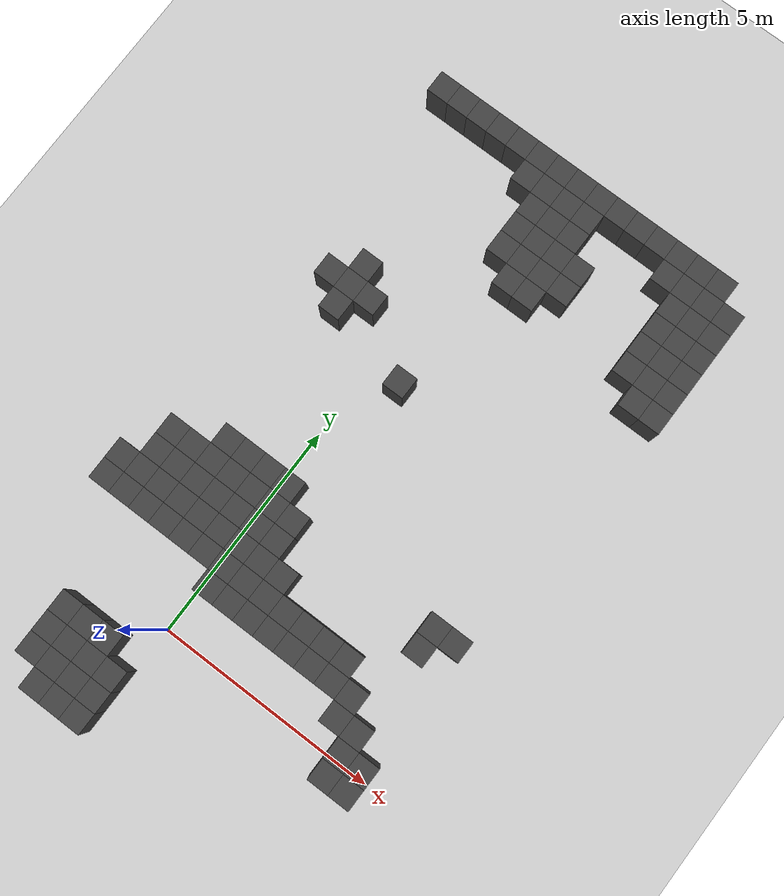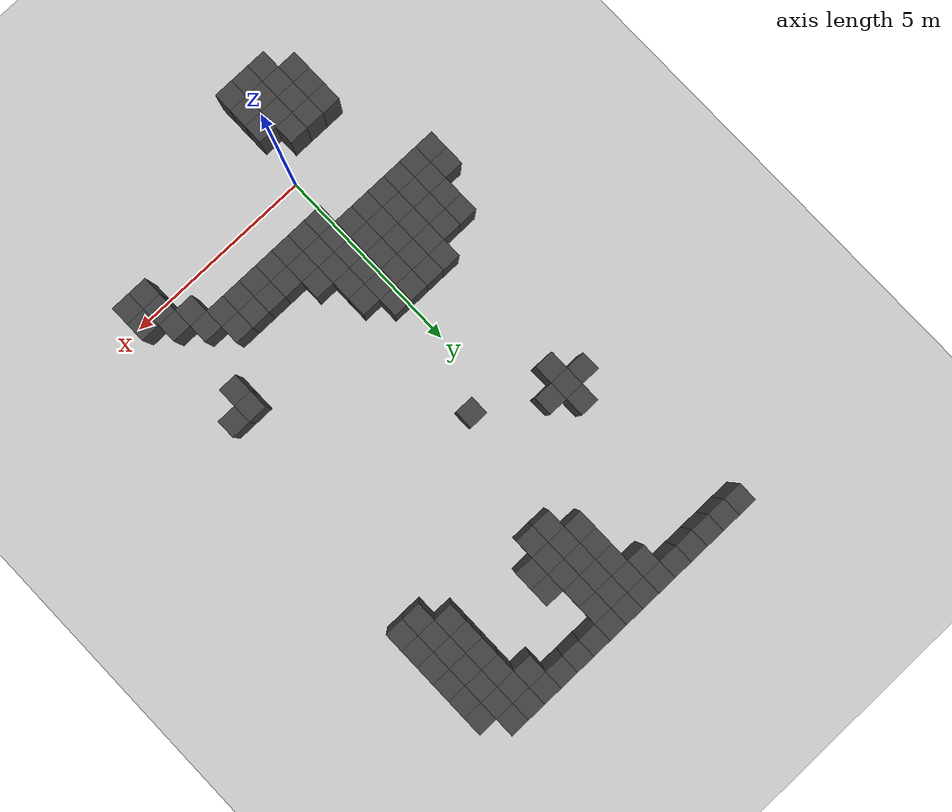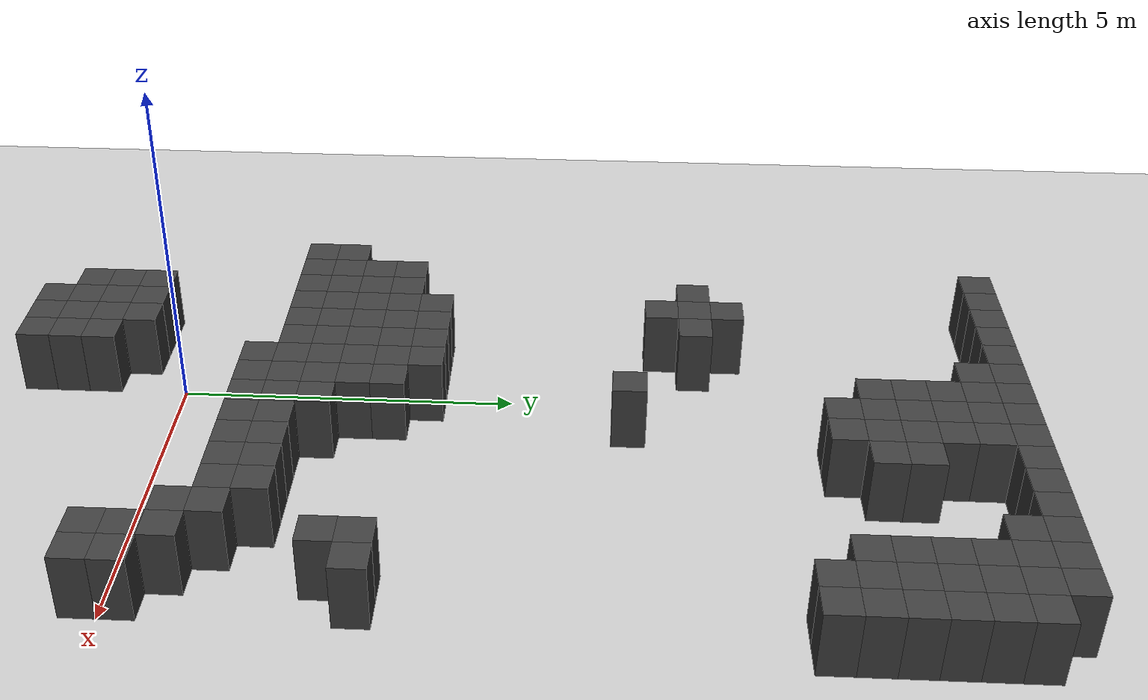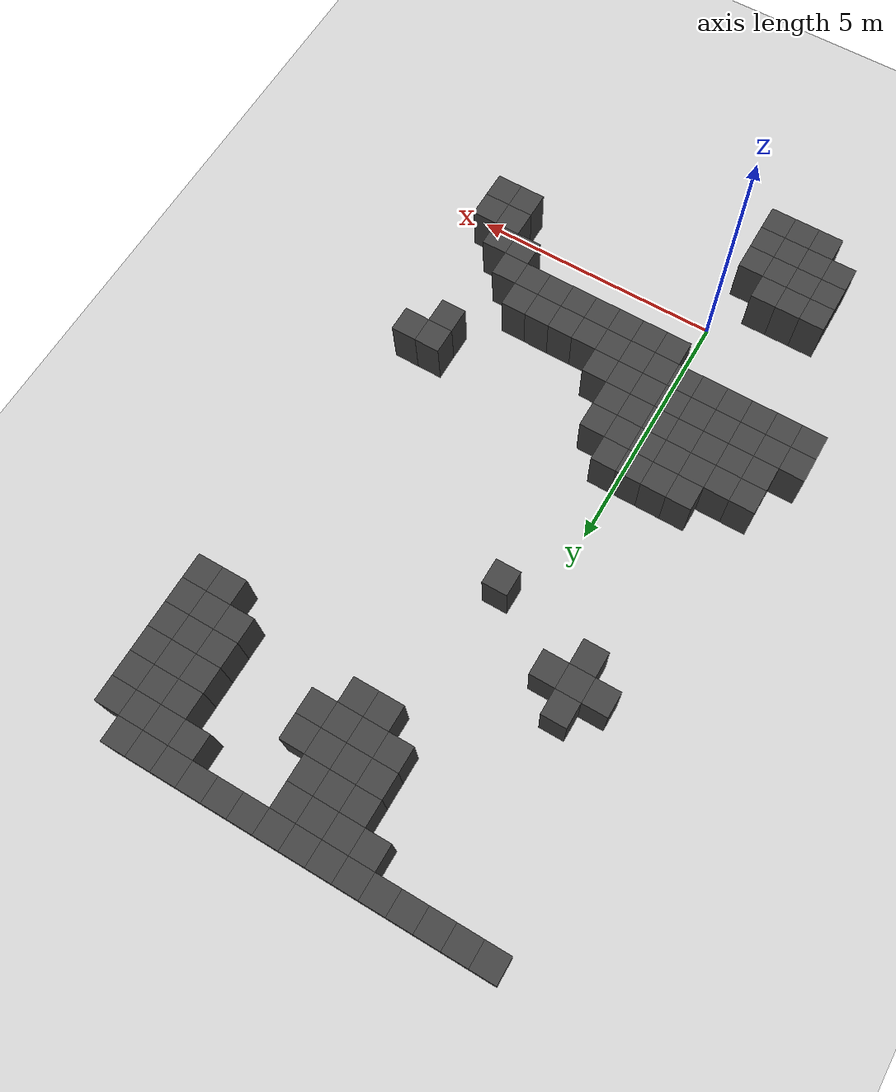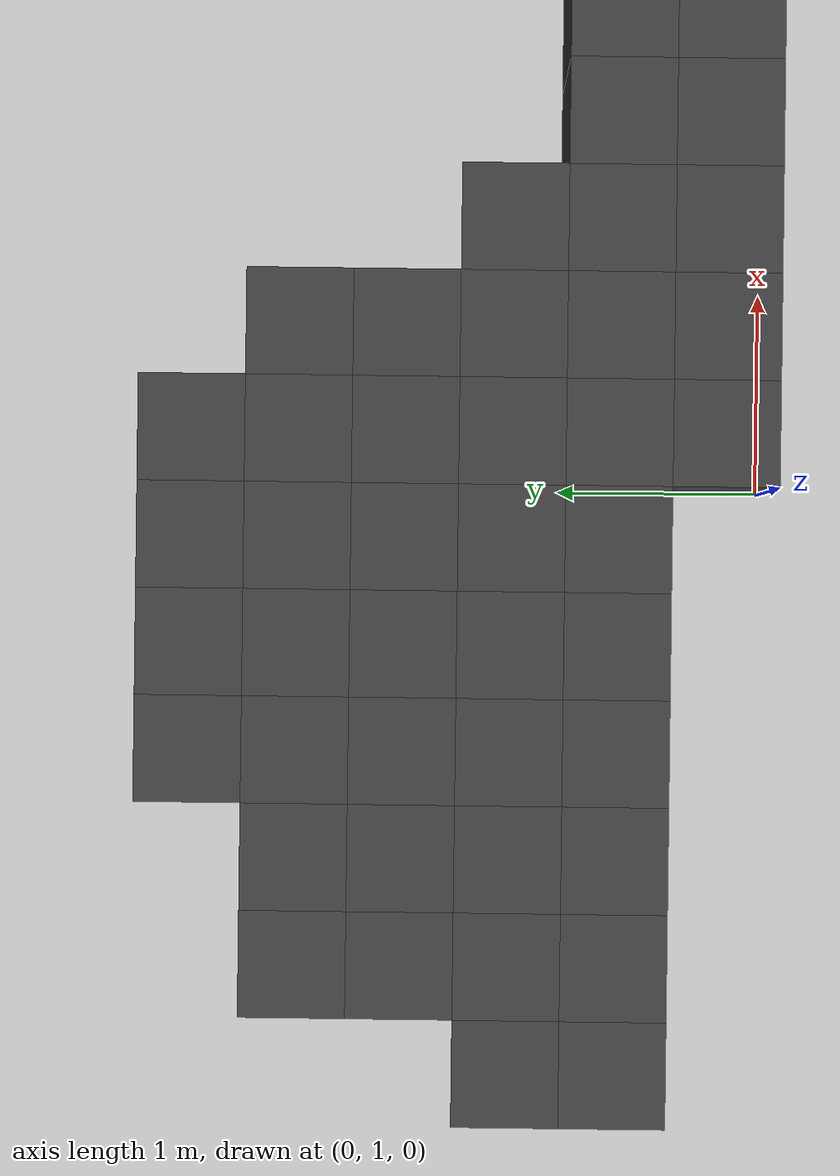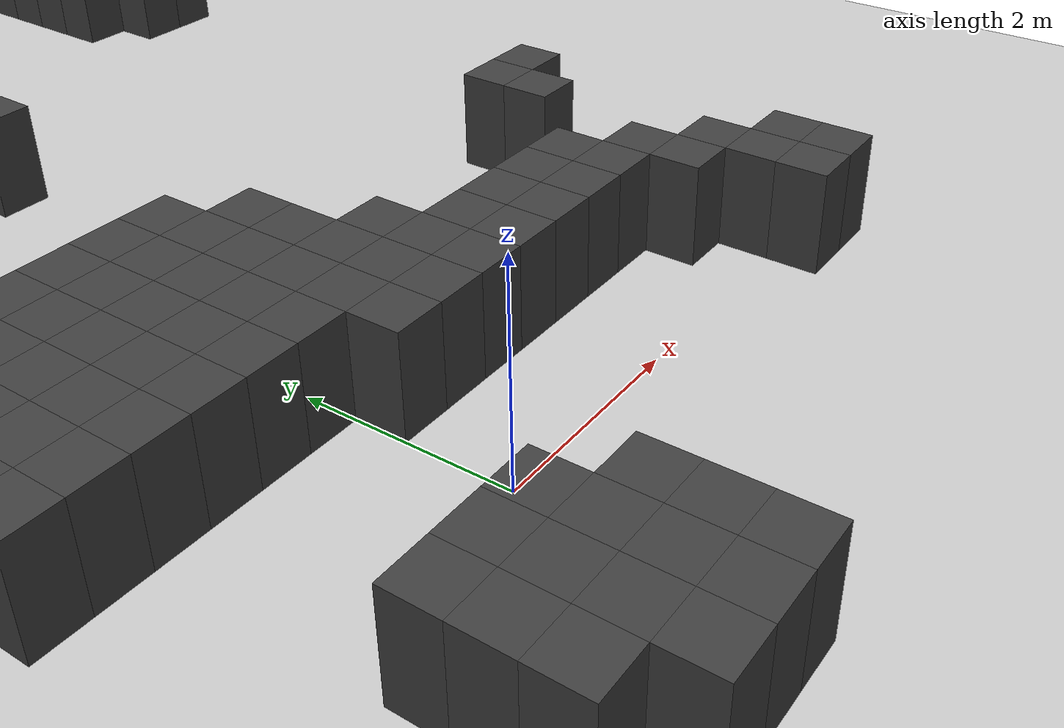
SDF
<sdf version="1.7">
 <world name="map_7981">
  <model name="ground_plane">
   <static>true</static>
   <link name="link">
    <collision name="collision">
     <geometry><plane><normal>0 0 1</normal><size>200 200</size></plane></geometry>
    </collision>
    <visual name="visual">
     <geometry><plane><normal>0 0 1</normal><size>200 200</size></plane></geometry>
     <material><ambient>0.8 0.8 0.8 1</ambient><diffuse>0.8 0.8 0.8 1</diffuse></material>
    </visual>
   </link>
  </model>
  <model name="maze_environment">
   <static>true</static>
   <link name="wall_20">
    <pose>-2.250 12.250 0.500 0 0 0</pose>
    <collision name="col"><geometry><box><size>0.5 0.5 1.0</size></box></geometry></collision>
    <visual name="vis">
     <geometry><box><size>0.5 0.5 1.0</size></box></geometry>
     <material><ambient>0.15 0.15 0.15 1</ambient><diffuse>0.25 0.25 0.25 1</diffuse></material>
    </visual>
   </link>
   <link name="wall_21">
    <pose>-1.750 12.250 0.500 0 0 0</pose>
    <collision name="col"><geometry><box><size>0.5 0.5 1.0</size></box></geometry></collision>
    <visual name="vis">
     <geometry><box><size>0.5 0.5 1.0</size></box></geometry>
     <material><ambient>0.15 0.15 0.15 1</ambient><diffuse>0.25 0.25 0.25 1</diffuse></material>
    </visual>
   </link>
   <link name="wall_22">
    <pose>-1.250 12.250 0.500 0 0 0</pose>
    <collision name="col"><geometry><box><size>0.5 0.5 1.0</size></box></geometry></collision>
    <visual name="vis">
     <geometry><box><size>0.5 0.5 1.0</size></box></geometry>
     <material><ambient>0.15 0.15 0.15 1</ambient><diffuse>0.25 0.25 0.25 1</diffuse></material>
    </visual>
   </link>
   <link name="wall_23">
    <pose>-0.750 12.250 0.500 0 0 0</pose>
    <collision name="col"><geometry><box><size>0.5 0.5 1.0</size></box></geometry></collision>
    <visual name="vis">
     <geometry><box><size>0.5 0.5 1.0</size></box></geometry>
     <material><ambient>0.15 0.15 0.15 1</ambient><diffuse>0.25 0.25 0.25 1</diffuse></material>
    </visual>
   </link>
   <link name="wall_24">
    <pose>-0.250 12.250 0.500 0 0 0</pose>
    <collision name="col"><geometry><box><size>0.5 0.5 1.0</size></box></geometry></collision>
    <visual name="vis">
     <geometry><box><size>0.5 0.5 1.0</size></box></geometry>
     <material><ambient>0.15 0.15 0.15 1</ambient><diffuse>0.25 0.25 0.25 1</diffuse></material>
    </visual>
   </link>
   <link name="wall_25">
    <pose>0.250 12.250 0.500 0 0 0</pose>
    <collision name="col"><geometry><box><size>0.5 0.5 1.0</size></box></geometry></collision>
    <visual name="vis">
     <geometry><box><size>0.5 0.5 1.0</size></box></geometry>
     <material><ambient>0.15 0.15 0.15 1</ambient><diffuse>0.25 0.25 0.25 1</diffuse></material>
    </visual>
   </link>
   <link name="wall_26">
    <pose>0.750 12.250 0.500 0 0 0</pose>
    <collision name="col"><geometry><box><size>0.5 0.5 1.0</size></box></geometry></collision>
    <visual name="vis">
     <geometry><box><size>0.5 0.5 1.0</size></box></geometry>
     <material><ambient>0.15 0.15 0.15 1</ambient><diffuse>0.25 0.25 0.25 1</diffuse></material>
    </visual>
   </link>
   <link name="wall_27">
    <pose>1.250 12.250 0.500 0 0 0</pose>
    <collision name="col"><geometry><box><size>0.5 0.5 1.0</size></box></geometry></collision>
    <visual name="vis">
     <geometry><box><size>0.5 0.5 1.0</size></box></geometry>
     <material><ambient>0.15 0.15 0.15 1</ambient><diffuse>0.25 0.25 0.25 1</diffuse></material>
    </visual>
   </link>
   <link name="wall_28">
    <pose>1.750 12.250 0.500 0 0 0</pose>
    <collision name="col"><geometry><box><size>0.5 0.5 1.0</size></box></geometry></collision>
    <visual name="vis">
     <geometry><box><size>0.5 0.5 1.0</size></box></geometry>
     <material><ambient>0.15 0.15 0.15 1</ambient><diffuse>0.25 0.25 0.25 1</diffuse></material>
    </visual>
   </link>
   <link name="wall_29">
    <pose>2.250 12.250 0.500 0 0 0</pose>
    <collision name="col"><geometry><box><size>0.5 0.5 1.0</size></box></geometry></collision>
    <visual name="vis">
     <geometry><box><size>0.5 0.5 1.0</size></box></geometry>
     <material><ambient>0.15 0.15 0.15 1</ambient><diffuse>0.25 0.25 0.25 1</diffuse></material>
    </visual>
   </link>
   <link name="wall_30">
    <pose>2.750 12.250 0.500 0 0 0</pose>
    <collision name="col"><geometry><box><size>0.5 0.5 1.0</size></box></geometry></collision>
    <visual name="vis">
     <geometry><box><size>0.5 0.5 1.0</size></box></geometry>
     <material><ambient>0.15 0.15 0.15 1</ambient><diffuse>0.25 0.25 0.25 1</diffuse></material>
    </visual>
   </link>
   <link name="wall_31">
    <pose>3.250 12.250 0.500 0 0 0</pose>
    <collision name="col"><geometry><box><size>0.5 0.5 1.0</size></box></geometry></collision>
    <visual name="vis">
     <geometry><box><size>0.5 0.5 1.0</size></box></geometry>
     <material><ambient>0.15 0.15 0.15 1</ambient><diffuse>0.25 0.25 0.25 1</diffuse></material>
    </visual>
   </link>
   <link name="wall_32">
    <pose>3.750 12.250 0.500 0 0 0</pose>
    <collision name="col"><geometry><box><size>0.5 0.5 1.0</size></box></geometry></collision>
    <visual name="vis">
     <geometry><box><size>0.5 0.5 1.0</size></box></geometry>
     <material><ambient>0.15 0.15 0.15 1</ambient><diffuse>0.25 0.25 0.25 1</diffuse></material>
    </visual>
   </link>
   <link name="wall_33">
    <pose>4.250 12.250 0.500 0 0 0</pose>
    <collision name="col"><geometry><box><size>0.5 0.5 1.0</size></box></geometry></collision>
    <visual name="vis">
     <geometry><box><size>0.5 0.5 1.0</size></box></geometry>
     <material><ambient>0.15 0.15 0.15 1</ambient><diffuse>0.25 0.25 0.25 1</diffuse></material>
    </visual>
   </link>
   <link name="wall_34">
    <pose>4.750 12.250 0.500 0 0 0</pose>
    <collision name="col"><geometry><box><size>0.5 0.5 1.0</size></box></geometry></collision>
    <visual name="vis">
     <geometry><box><size>0.5 0.5 1.0</size></box></geometry>
     <material><ambient>0.15 0.15 0.15 1</ambient><diffuse>0.25 0.25 0.25 1</diffuse></material>
    </visual>
   </link>
   <link name="wall_59">
    <pose>0.250 11.750 0.500 0 0 0</pose>
    <collision name="col"><geometry><box><size>0.5 0.5 1.0</size></box></geometry></collision>
    <visual name="vis">
     <geometry><box><size>0.5 0.5 1.0</size></box></geometry>
     <material><ambient>0.15 0.15 0.15 1</ambient><diffuse>0.25 0.25 0.25 1</diffuse></material>
    </visual>
   </link>
   <link name="wall_60">
    <pose>0.750 11.750 0.500 0 0 0</pose>
    <collision name="col"><geometry><box><size>0.5 0.5 1.0</size></box></geometry></collision>
    <visual name="vis">
     <geometry><box><size>0.5 0.5 1.0</size></box></geometry>
     <material><ambient>0.15 0.15 0.15 1</ambient><diffuse>0.25 0.25 0.25 1</diffuse></material>
    </visual>
   </link>
   <link name="wall_61">
    <pose>1.250 11.750 0.500 0 0 0</pose>
    <collision name="col"><geometry><box><size>0.5 0.5 1.0</size></box></geometry></collision>
    <visual name="vis">
     <geometry><box><size>0.5 0.5 1.0</size></box></geometry>
     <material><ambient>0.15 0.15 0.15 1</ambient><diffuse>0.25 0.25 0.25 1</diffuse></material>
    </visual>
   </link>
   <link name="wall_62">
    <pose>1.750 11.750 0.500 0 0 0</pose>
    <collision name="col"><geometry><box><size>0.5 0.5 1.0</size></box></geometry></collision>
    <visual name="vis">
     <geometry><box><size>0.5 0.5 1.0</size></box></geometry>
     <material><ambient>0.15 0.15 0.15 1</ambient><diffuse>0.25 0.25 0.25 1</diffuse></material>
    </visual>
   </link>
   <link name="wall_63">
    <pose>3.750 11.750 0.500 0 0 0</pose>
    <collision name="col"><geometry><box><size>0.5 0.5 1.0</size></box></geometry></collision>
    <visual name="vis">
     <geometry><box><size>0.5 0.5 1.0</size></box></geometry>
     <material><ambient>0.15 0.15 0.15 1</ambient><diffuse>0.25 0.25 0.25 1</diffuse></material>
    </visual>
   </link>
   <link name="wall_64">
    <pose>4.250 11.750 0.500 0 0 0</pose>
    <collision name="col"><geometry><box><size>0.5 0.5 1.0</size></box></geometry></collision>
    <visual name="vis">
     <geometry><box><size>0.5 0.5 1.0</size></box></geometry>
     <material><ambient>0.15 0.15 0.15 1</ambient><diffuse>0.25 0.25 0.25 1</diffuse></material>
    </visual>
   </link>
   <link name="wall_65">
    <pose>4.750 11.750 0.500 0 0 0</pose>
    <collision name="col"><geometry><box><size>0.5 0.5 1.0</size></box></geometry></collision>
    <visual name="vis">
     <geometry><box><size>0.5 0.5 1.0</size></box></geometry>
     <material><ambient>0.15 0.15 0.15 1</ambient><diffuse>0.25 0.25 0.25 1</diffuse></material>
    </visual>
   </link>
   <link name="wall_66">
    <pose>5.250 11.750 0.500 0 0 0</pose>
    <collision name="col"><geometry><box><size>0.5 0.5 1.0</size></box></geometry></collision>
    <visual name="vis">
     <geometry><box><size>0.5 0.5 1.0</size></box></geometry>
     <material><ambient>0.15 0.15 0.15 1</ambient><diffuse>0.25 0.25 0.25 1</diffuse></material>
    </visual>
   </link>
   <link name="wall_77">
    <pose>0.750 11.250 0.500 0 0 0</pose>
    <collision name="col"><geometry><box><size>0.5 0.5 1.0</size></box></geometry></collision>
    <visual name="vis">
     <geometry><box><size>0.5 0.5 1.0</size></box></geometry>
     <material><ambient>0.15 0.15 0.15 1</ambient><diffuse>0.25 0.25 0.25 1</diffuse></material>
    </visual>
   </link>
   <link name="wall_78">
    <pose>1.250 11.250 0.500 0 0 0</pose>
    <collision name="col"><geometry><box><size>0.5 0.5 1.0</size></box></geometry></collision>
    <visual name="vis">
     <geometry><box><size>0.5 0.5 1.0</size></box></geometry>
     <material><ambient>0.15 0.15 0.15 1</ambient><diffuse>0.25 0.25 0.25 1</diffuse></material>
    </visual>
   </link>
   <link name="wall_79">
    <pose>1.750 11.250 0.500 0 0 0</pose>
    <collision name="col"><geometry><box><size>0.5 0.5 1.0</size></box></geometry></collision>
    <visual name="vis">
     <geometry><box><size>0.5 0.5 1.0</size></box></geometry>
     <material><ambient>0.15 0.15 0.15 1</ambient><diffuse>0.25 0.25 0.25 1</diffuse></material>
    </visual>
   </link>
   <link name="wall_80">
    <pose>4.250 11.250 0.500 0 0 0</pose>
    <collision name="col"><geometry><box><size>0.5 0.5 1.0</size></box></geometry></collision>
    <visual name="vis">
     <geometry><box><size>0.5 0.5 1.0</size></box></geometry>
     <material><ambient>0.15 0.15 0.15 1</ambient><diffuse>0.25 0.25 0.25 1</diffuse></material>
    </visual>
   </link>
   <link name="wall_81">
    <pose>4.750 11.250 0.500 0 0 0</pose>
    <collision name="col"><geometry><box><size>0.5 0.5 1.0</size></box></geometry></collision>
    <visual name="vis">
     <geometry><box><size>0.5 0.5 1.0</size></box></geometry>
     <material><ambient>0.15 0.15 0.15 1</ambient><diffuse>0.25 0.25 0.25 1</diffuse></material>
    </visual>
   </link>
   <link name="wall_82">
    <pose>5.250 11.250 0.500 0 0 0</pose>
    <collision name="col"><geometry><box><size>0.5 0.5 1.0</size></box></geometry></collision>
    <visual name="vis">
     <geometry><box><size>0.5 0.5 1.0</size></box></geometry>
     <material><ambient>0.15 0.15 0.15 1</ambient><diffuse>0.25 0.25 0.25 1</diffuse></material>
    </visual>
   </link>
   <link name="wall_89">
    <pose>0.750 10.750 0.500 0 0 0</pose>
    <collision name="col"><geometry><box><size>0.5 0.5 1.0</size></box></geometry></collision>
    <visual name="vis">
     <geometry><box><size>0.5 0.5 1.0</size></box></geometry>
     <material><ambient>0.15 0.15 0.15 1</ambient><diffuse>0.25 0.25 0.25 1</diffuse></material>
    </visual>
   </link>
   <link name="wall_90">
    <pose>1.250 10.750 0.500 0 0 0</pose>
    <collision name="col"><geometry><box><size>0.5 0.5 1.0</size></box></geometry></collision>
    <visual name="vis">
     <geometry><box><size>0.5 0.5 1.0</size></box></geometry>
     <material><ambient>0.15 0.15 0.15 1</ambient><diffuse>0.25 0.25 0.25 1</diffuse></material>
    </visual>
   </link>
   <link name="wall_91">
    <pose>1.750 10.750 0.500 0 0 0</pose>
    <collision name="col"><geometry><box><size>0.5 0.5 1.0</size></box></geometry></collision>
    <visual name="vis">
     <geometry><box><size>0.5 0.5 1.0</size></box></geometry>
     <material><ambient>0.15 0.15 0.15 1</ambient><diffuse>0.25 0.25 0.25 1</diffuse></material>
    </visual>
   </link>
   <link name="wall_92">
    <pose>2.250 10.750 0.500 0 0 0</pose>
    <collision name="col"><geometry><box><size>0.5 0.5 1.0</size></box></geometry></collision>
    <visual name="vis">
     <geometry><box><size>0.5 0.5 1.0</size></box></geometry>
     <material><ambient>0.15 0.15 0.15 1</ambient><diffuse>0.25 0.25 0.25 1</diffuse></material>
    </visual>
   </link>
   <link name="wall_93">
    <pose>4.250 10.750 0.500 0 0 0</pose>
    <collision name="col"><geometry><box><size>0.5 0.5 1.0</size></box></geometry></collision>
    <visual name="vis">
     <geometry><box><size>0.5 0.5 1.0</size></box></geometry>
     <material><ambient>0.15 0.15 0.15 1</ambient><diffuse>0.25 0.25 0.25 1</diffuse></material>
    </visual>
   </link>
   <link name="wall_94">
    <pose>4.750 10.750 0.500 0 0 0</pose>
    <collision name="col"><geometry><box><size>0.5 0.5 1.0</size></box></geometry></collision>
    <visual name="vis">
     <geometry><box><size>0.5 0.5 1.0</size></box></geometry>
     <material><ambient>0.15 0.15 0.15 1</ambient><diffuse>0.25 0.25 0.25 1</diffuse></material>
    </visual>
   </link>
   <link name="wall_95">
    <pose>5.250 10.750 0.500 0 0 0</pose>
    <collision name="col"><geometry><box><size>0.5 0.5 1.0</size></box></geometry></collision>
    <visual name="vis">
     <geometry><box><size>0.5 0.5 1.0</size></box></geometry>
     <material><ambient>0.15 0.15 0.15 1</ambient><diffuse>0.25 0.25 0.25 1</diffuse></material>
    </visual>
   </link>
   <link name="wall_102">
    <pose>0.750 10.250 0.500 0 0 0</pose>
    <collision name="col"><geometry><box><size>0.5 0.5 1.0</size></box></geometry></collision>
    <visual name="vis">
     <geometry><box><size>0.5 0.5 1.0</size></box></geometry>
     <material><ambient>0.15 0.15 0.15 1</ambient><diffuse>0.25 0.25 0.25 1</diffuse></material>
    </visual>
   </link>
   <link name="wall_103">
    <pose>1.250 10.250 0.500 0 0 0</pose>
    <collision name="col"><geometry><box><size>0.5 0.5 1.0</size></box></geometry></collision>
    <visual name="vis">
     <geometry><box><size>0.5 0.5 1.0</size></box></geometry>
     <material><ambient>0.15 0.15 0.15 1</ambient><diffuse>0.25 0.25 0.25 1</diffuse></material>
    </visual>
   </link>
   <link name="wall_104">
    <pose>1.750 10.250 0.500 0 0 0</pose>
    <collision name="col"><geometry><box><size>0.5 0.5 1.0</size></box></geometry></collision>
    <visual name="vis">
     <geometry><box><size>0.5 0.5 1.0</size></box></geometry>
     <material><ambient>0.15 0.15 0.15 1</ambient><diffuse>0.25 0.25 0.25 1</diffuse></material>
    </visual>
   </link>
   <link name="wall_105">
    <pose>2.250 10.250 0.500 0 0 0</pose>
    <collision name="col"><geometry><box><size>0.5 0.5 1.0</size></box></geometry></collision>
    <visual name="vis">
     <geometry><box><size>0.5 0.5 1.0</size></box></geometry>
     <material><ambient>0.15 0.15 0.15 1</ambient><diffuse>0.25 0.25 0.25 1</diffuse></material>
    </visual>
   </link>
   <link name="wall_106">
    <pose>4.250 10.250 0.500 0 0 0</pose>
    <collision name="col"><geometry><box><size>0.5 0.5 1.0</size></box></geometry></collision>
    <visual name="vis">
     <geometry><box><size>0.5 0.5 1.0</size></box></geometry>
     <material><ambient>0.15 0.15 0.15 1</ambient><diffuse>0.25 0.25 0.25 1</diffuse></material>
    </visual>
   </link>
   <link name="wall_107">
    <pose>4.750 10.250 0.500 0 0 0</pose>
    <collision name="col"><geometry><box><size>0.5 0.5 1.0</size></box></geometry></collision>
    <visual name="vis">
     <geometry><box><size>0.5 0.5 1.0</size></box></geometry>
     <material><ambient>0.15 0.15 0.15 1</ambient><diffuse>0.25 0.25 0.25 1</diffuse></material>
    </visual>
   </link>
   <link name="wall_108">
    <pose>5.250 10.250 0.500 0 0 0</pose>
    <collision name="col"><geometry><box><size>0.5 0.5 1.0</size></box></geometry></collision>
    <visual name="vis">
     <geometry><box><size>0.5 0.5 1.0</size></box></geometry>
     <material><ambient>0.15 0.15 0.15 1</ambient><diffuse>0.25 0.25 0.25 1</diffuse></material>
    </visual>
   </link>
   <link name="wall_118">
    <pose>1.250 9.750 0.500 0 0 0</pose>
    <collision name="col"><geometry><box><size>0.5 0.5 1.0</size></box></geometry></collision>
    <visual name="vis">
     <geometry><box><size>0.5 0.5 1.0</size></box></geometry>
     <material><ambient>0.15 0.15 0.15 1</ambient><diffuse>0.25 0.25 0.25 1</diffuse></material>
    </visual>
   </link>
   <link name="wall_119">
    <pose>1.750 9.750 0.500 0 0 0</pose>
    <collision name="col"><geometry><box><size>0.5 0.5 1.0</size></box></geometry></collision>
    <visual name="vis">
     <geometry><box><size>0.5 0.5 1.0</size></box></geometry>
     <material><ambient>0.15 0.15 0.15 1</ambient><diffuse>0.25 0.25 0.25 1</diffuse></material>
    </visual>
   </link>
   <link name="wall_120">
    <pose>4.250 9.750 0.500 0 0 0</pose>
    <collision name="col"><geometry><box><size>0.5 0.5 1.0</size></box></geometry></collision>
    <visual name="vis">
     <geometry><box><size>0.5 0.5 1.0</size></box></geometry>
     <material><ambient>0.15 0.15 0.15 1</ambient><diffuse>0.25 0.25 0.25 1</diffuse></material>
    </visual>
   </link>
   <link name="wall_121">
    <pose>4.750 9.750 0.500 0 0 0</pose>
    <collision name="col"><geometry><box><size>0.5 0.5 1.0</size></box></geometry></collision>
    <visual name="vis">
     <geometry><box><size>0.5 0.5 1.0</size></box></geometry>
     <material><ambient>0.15 0.15 0.15 1</ambient><diffuse>0.25 0.25 0.25 1</diffuse></material>
    </visual>
   </link>
   <link name="wall_122">
    <pose>5.250 9.750 0.500 0 0 0</pose>
    <collision name="col"><geometry><box><size>0.5 0.5 1.0</size></box></geometry></collision>
    <visual name="vis">
     <geometry><box><size>0.5 0.5 1.0</size></box></geometry>
     <material><ambient>0.15 0.15 0.15 1</ambient><diffuse>0.25 0.25 0.25 1</diffuse></material>
    </visual>
   </link>
   <link name="wall_135">
    <pose>4.750 9.250 0.500 0 0 0</pose>
    <collision name="col"><geometry><box><size>0.5 0.5 1.0</size></box></geometry></collision>
    <visual name="vis">
     <geometry><box><size>0.5 0.5 1.0</size></box></geometry>
     <material><ambient>0.15 0.15 0.15 1</ambient><diffuse>0.25 0.25 0.25 1</diffuse></material>
    </visual>
   </link>
   <link name="wall_136">
    <pose>5.250 9.250 0.500 0 0 0</pose>
    <collision name="col"><geometry><box><size>0.5 0.5 1.0</size></box></geometry></collision>
    <visual name="vis">
     <geometry><box><size>0.5 0.5 1.0</size></box></geometry>
     <material><ambient>0.15 0.15 0.15 1</ambient><diffuse>0.25 0.25 0.25 1</diffuse></material>
    </visual>
   </link>
   <link name="wall_147">
    <pose>-1.250 8.250 0.500 0 0 0</pose>
    <collision name="col"><geometry><box><size>0.5 0.5 1.0</size></box></geometry></collision>
    <visual name="vis">
     <geometry><box><size>0.5 0.5 1.0</size></box></geometry>
     <material><ambient>0.15 0.15 0.15 1</ambient><diffuse>0.25 0.25 0.25 1</diffuse></material>
    </visual>
   </link>
   <link name="wall_150">
    <pose>-1.750 7.750 0.500 0 0 0</pose>
    <collision name="col"><geometry><box><size>0.5 0.5 1.0</size></box></geometry></collision>
    <visual name="vis">
     <geometry><box><size>0.5 0.5 1.0</size></box></geometry>
     <material><ambient>0.15 0.15 0.15 1</ambient><diffuse>0.25 0.25 0.25 1</diffuse></material>
    </visual>
   </link>
   <link name="wall_151">
    <pose>-1.250 7.750 0.500 0 0 0</pose>
    <collision name="col"><geometry><box><size>0.5 0.5 1.0</size></box></geometry></collision>
    <visual name="vis">
     <geometry><box><size>0.5 0.5 1.0</size></box></geometry>
     <material><ambient>0.15 0.15 0.15 1</ambient><diffuse>0.25 0.25 0.25 1</diffuse></material>
    </visual>
   </link>
   <link name="wall_152">
    <pose>-0.750 7.750 0.500 0 0 0</pose>
    <collision name="col"><geometry><box><size>0.5 0.5 1.0</size></box></geometry></collision>
    <visual name="vis">
     <geometry><box><size>0.5 0.5 1.0</size></box></geometry>
     <material><ambient>0.15 0.15 0.15 1</ambient><diffuse>0.25 0.25 0.25 1</diffuse></material>
    </visual>
   </link>
   <link name="wall_155">
    <pose>-1.250 7.250 0.500 0 0 0</pose>
    <collision name="col"><geometry><box><size>0.5 0.5 1.0</size></box></geometry></collision>
    <visual name="vis">
     <geometry><box><size>0.5 0.5 1.0</size></box></geometry>
     <material><ambient>0.15 0.15 0.15 1</ambient><diffuse>0.25 0.25 0.25 1</diffuse></material>
    </visual>
   </link>
   <link name="wall_160">
    <pose>0.750 6.750 0.500 0 0 0</pose>
    <collision name="col"><geometry><box><size>0.5 0.5 1.0</size></box></geometry></collision>
    <visual name="vis">
     <geometry><box><size>0.5 0.5 1.0</size></box></geometry>
     <material><ambient>0.15 0.15 0.15 1</ambient><diffuse>0.25 0.25 0.25 1</diffuse></material>
    </visual>
   </link>
   <link name="wall_216">
    <pose>-1.250 3.750 0.500 0 0 0</pose>
    <collision name="col"><geometry><box><size>0.5 0.5 1.0</size></box></geometry></collision>
    <visual name="vis">
     <geometry><box><size>0.5 0.5 1.0</size></box></geometry>
     <material><ambient>0.15 0.15 0.15 1</ambient><diffuse>0.25 0.25 0.25 1</diffuse></material>
    </visual>
   </link>
   <link name="wall_217">
    <pose>-0.750 3.750 0.500 0 0 0</pose>
    <collision name="col"><geometry><box><size>0.5 0.5 1.0</size></box></geometry></collision>
    <visual name="vis">
     <geometry><box><size>0.5 0.5 1.0</size></box></geometry>
     <material><ambient>0.15 0.15 0.15 1</ambient><diffuse>0.25 0.25 0.25 1</diffuse></material>
    </visual>
   </link>
   <link name="wall_218">
    <pose>-0.250 3.750 0.500 0 0 0</pose>
    <collision name="col"><geometry><box><size>0.5 0.5 1.0</size></box></geometry></collision>
    <visual name="vis">
     <geometry><box><size>0.5 0.5 1.0</size></box></geometry>
     <material><ambient>0.15 0.15 0.15 1</ambient><diffuse>0.25 0.25 0.25 1</diffuse></material>
    </visual>
   </link>
   <link name="wall_219">
    <pose>0.250 3.750 0.500 0 0 0</pose>
    <collision name="col"><geometry><box><size>0.5 0.5 1.0</size></box></geometry></collision>
    <visual name="vis">
     <geometry><box><size>0.5 0.5 1.0</size></box></geometry>
     <material><ambient>0.15 0.15 0.15 1</ambient><diffuse>0.25 0.25 0.25 1</diffuse></material>
    </visual>
   </link>
   <link name="wall_242">
    <pose>-2.250 3.250 0.500 0 0 0</pose>
    <collision name="col"><geometry><box><size>0.5 0.5 1.0</size></box></geometry></collision>
    <visual name="vis">
     <geometry><box><size>0.5 0.5 1.0</size></box></geometry>
     <material><ambient>0.15 0.15 0.15 1</ambient><diffuse>0.25 0.25 0.25 1</diffuse></material>
    </visual>
   </link>
   <link name="wall_243">
    <pose>-1.750 3.250 0.500 0 0 0</pose>
    <collision name="col"><geometry><box><size>0.5 0.5 1.0</size></box></geometry></collision>
    <visual name="vis">
     <geometry><box><size>0.5 0.5 1.0</size></box></geometry>
     <material><ambient>0.15 0.15 0.15 1</ambient><diffuse>0.25 0.25 0.25 1</diffuse></material>
    </visual>
   </link>
   <link name="wall_244">
    <pose>-1.250 3.250 0.500 0 0 0</pose>
    <collision name="col"><geometry><box><size>0.5 0.5 1.0</size></box></geometry></collision>
    <visual name="vis">
     <geometry><box><size>0.5 0.5 1.0</size></box></geometry>
     <material><ambient>0.15 0.15 0.15 1</ambient><diffuse>0.25 0.25 0.25 1</diffuse></material>
    </visual>
   </link>
   <link name="wall_245">
    <pose>-0.750 3.250 0.500 0 0 0</pose>
    <collision name="col"><geometry><box><size>0.5 0.5 1.0</size></box></geometry></collision>
    <visual name="vis">
     <geometry><box><size>0.5 0.5 1.0</size></box></geometry>
     <material><ambient>0.15 0.15 0.15 1</ambient><diffuse>0.25 0.25 0.25 1</diffuse></material>
    </visual>
   </link>
   <link name="wall_246">
    <pose>-0.250 3.250 0.500 0 0 0</pose>
    <collision name="col"><geometry><box><size>0.5 0.5 1.0</size></box></geometry></collision>
    <visual name="vis">
     <geometry><box><size>0.5 0.5 1.0</size></box></geometry>
     <material><ambient>0.15 0.15 0.15 1</ambient><diffuse>0.25 0.25 0.25 1</diffuse></material>
    </visual>
   </link>
   <link name="wall_247">
    <pose>0.250 3.250 0.500 0 0 0</pose>
    <collision name="col"><geometry><box><size>0.5 0.5 1.0</size></box></geometry></collision>
    <visual name="vis">
     <geometry><box><size>0.5 0.5 1.0</size></box></geometry>
     <material><ambient>0.15 0.15 0.15 1</ambient><diffuse>0.25 0.25 0.25 1</diffuse></material>
    </visual>
   </link>
   <link name="wall_248">
    <pose>0.750 3.250 0.500 0 0 0</pose>
    <collision name="col"><geometry><box><size>0.5 0.5 1.0</size></box></geometry></collision>
    <visual name="vis">
     <geometry><box><size>0.5 0.5 1.0</size></box></geometry>
     <material><ambient>0.15 0.15 0.15 1</ambient><diffuse>0.25 0.25 0.25 1</diffuse></material>
    </visual>
   </link>
   <link name="wall_249">
    <pose>4.250 3.250 0.500 0 0 0</pose>
    <collision name="col"><geometry><box><size>0.5 0.5 1.0</size></box></geometry></collision>
    <visual name="vis">
     <geometry><box><size>0.5 0.5 1.0</size></box></geometry>
     <material><ambient>0.15 0.15 0.15 1</ambient><diffuse>0.25 0.25 0.25 1</diffuse></material>
    </visual>
   </link>
   <link name="wall_250">
    <pose>4.750 3.250 0.500 0 0 0</pose>
    <collision name="col"><geometry><box><size>0.5 0.5 1.0</size></box></geometry></collision>
    <visual name="vis">
     <geometry><box><size>0.5 0.5 1.0</size></box></geometry>
     <material><ambient>0.15 0.15 0.15 1</ambient><diffuse>0.25 0.25 0.25 1</diffuse></material>
    </visual>
   </link>
   <link name="wall_273">
    <pose>-2.250 2.750 0.500 0 0 0</pose>
    <collision name="col"><geometry><box><size>0.5 0.5 1.0</size></box></geometry></collision>
    <visual name="vis">
     <geometry><box><size>0.5 0.5 1.0</size></box></geometry>
     <material><ambient>0.15 0.15 0.15 1</ambient><diffuse>0.25 0.25 0.25 1</diffuse></material>
    </visual>
   </link>
   <link name="wall_274">
    <pose>-1.750 2.750 0.500 0 0 0</pose>
    <collision name="col"><geometry><box><size>0.5 0.5 1.0</size></box></geometry></collision>
    <visual name="vis">
     <geometry><box><size>0.5 0.5 1.0</size></box></geometry>
     <material><ambient>0.15 0.15 0.15 1</ambient><diffuse>0.25 0.25 0.25 1</diffuse></material>
    </visual>
   </link>
   <link name="wall_275">
    <pose>-1.250 2.750 0.500 0 0 0</pose>
    <collision name="col"><geometry><box><size>0.5 0.5 1.0</size></box></geometry></collision>
    <visual name="vis">
     <geometry><box><size>0.5 0.5 1.0</size></box></geometry>
     <material><ambient>0.15 0.15 0.15 1</ambient><diffuse>0.25 0.25 0.25 1</diffuse></material>
    </visual>
   </link>
   <link name="wall_276">
    <pose>-0.750 2.750 0.500 0 0 0</pose>
    <collision name="col"><geometry><box><size>0.5 0.5 1.0</size></box></geometry></collision>
    <visual name="vis">
     <geometry><box><size>0.5 0.5 1.0</size></box></geometry>
     <material><ambient>0.15 0.15 0.15 1</ambient><diffuse>0.25 0.25 0.25 1</diffuse></material>
    </visual>
   </link>
   <link name="wall_277">
    <pose>-0.250 2.750 0.500 0 0 0</pose>
    <collision name="col"><geometry><box><size>0.5 0.5 1.0</size></box></geometry></collision>
    <visual name="vis">
     <geometry><box><size>0.5 0.5 1.0</size></box></geometry>
     <material><ambient>0.15 0.15 0.15 1</ambient><diffuse>0.25 0.25 0.25 1</diffuse></material>
    </visual>
   </link>
   <link name="wall_278">
    <pose>0.250 2.750 0.500 0 0 0</pose>
    <collision name="col"><geometry><box><size>0.5 0.5 1.0</size></box></geometry></collision>
    <visual name="vis">
     <geometry><box><size>0.5 0.5 1.0</size></box></geometry>
     <material><ambient>0.15 0.15 0.15 1</ambient><diffuse>0.25 0.25 0.25 1</diffuse></material>
    </visual>
   </link>
   <link name="wall_279">
    <pose>0.750 2.750 0.500 0 0 0</pose>
    <collision name="col"><geometry><box><size>0.5 0.5 1.0</size></box></geometry></collision>
    <visual name="vis">
     <geometry><box><size>0.5 0.5 1.0</size></box></geometry>
     <material><ambient>0.15 0.15 0.15 1</ambient><diffuse>0.25 0.25 0.25 1</diffuse></material>
    </visual>
   </link>
   <link name="wall_280">
    <pose>4.250 2.750 0.500 0 0 0</pose>
    <collision name="col"><geometry><box><size>0.5 0.5 1.0</size></box></geometry></collision>
    <visual name="vis">
     <geometry><box><size>0.5 0.5 1.0</size></box></geometry>
     <material><ambient>0.15 0.15 0.15 1</ambient><diffuse>0.25 0.25 0.25 1</diffuse></material>
    </visual>
   </link>
   <link name="wall_299">
    <pose>-2.750 2.250 0.500 0 0 0</pose>
    <collision name="col"><geometry><box><size>0.5 0.5 1.0</size></box></geometry></collision>
    <visual name="vis">
     <geometry><box><size>0.5 0.5 1.0</size></box></geometry>
     <material><ambient>0.15 0.15 0.15 1</ambient><diffuse>0.25 0.25 0.25 1</diffuse></material>
    </visual>
   </link>
   <link name="wall_300">
    <pose>-2.250 2.250 0.500 0 0 0</pose>
    <collision name="col"><geometry><box><size>0.5 0.5 1.0</size></box></geometry></collision>
    <visual name="vis">
     <geometry><box><size>0.5 0.5 1.0</size></box></geometry>
     <material><ambient>0.15 0.15 0.15 1</ambient><diffuse>0.25 0.25 0.25 1</diffuse></material>
    </visual>
   </link>
   <link name="wall_301">
    <pose>-1.750 2.250 0.500 0 0 0</pose>
    <collision name="col"><geometry><box><size>0.5 0.5 1.0</size></box></geometry></collision>
    <visual name="vis">
     <geometry><box><size>0.5 0.5 1.0</size></box></geometry>
     <material><ambient>0.15 0.15 0.15 1</ambient><diffuse>0.25 0.25 0.25 1</diffuse></material>
    </visual>
   </link>
   <link name="wall_302">
    <pose>-1.250 2.250 0.500 0 0 0</pose>
    <collision name="col"><geometry><box><size>0.5 0.5 1.0</size></box></geometry></collision>
    <visual name="vis">
     <geometry><box><size>0.5 0.5 1.0</size></box></geometry>
     <material><ambient>0.15 0.15 0.15 1</ambient><diffuse>0.25 0.25 0.25 1</diffuse></material>
    </visual>
   </link>
   <link name="wall_303">
    <pose>-0.750 2.250 0.500 0 0 0</pose>
    <collision name="col"><geometry><box><size>0.5 0.5 1.0</size></box></geometry></collision>
    <visual name="vis">
     <geometry><box><size>0.5 0.5 1.0</size></box></geometry>
     <material><ambient>0.15 0.15 0.15 1</ambient><diffuse>0.25 0.25 0.25 1</diffuse></material>
    </visual>
   </link>
   <link name="wall_304">
    <pose>-0.250 2.250 0.500 0 0 0</pose>
    <collision name="col"><geometry><box><size>0.5 0.5 1.0</size></box></geometry></collision>
    <visual name="vis">
     <geometry><box><size>0.5 0.5 1.0</size></box></geometry>
     <material><ambient>0.15 0.15 0.15 1</ambient><diffuse>0.25 0.25 0.25 1</diffuse></material>
    </visual>
   </link>
   <link name="wall_305">
    <pose>0.250 2.250 0.500 0 0 0</pose>
    <collision name="col"><geometry><box><size>0.5 0.5 1.0</size></box></geometry></collision>
    <visual name="vis">
     <geometry><box><size>0.5 0.5 1.0</size></box></geometry>
     <material><ambient>0.15 0.15 0.15 1</ambient><diffuse>0.25 0.25 0.25 1</diffuse></material>
    </visual>
   </link>
   <link name="wall_306">
    <pose>0.750 2.250 0.500 0 0 0</pose>
    <collision name="col"><geometry><box><size>0.5 0.5 1.0</size></box></geometry></collision>
    <visual name="vis">
     <geometry><box><size>0.5 0.5 1.0</size></box></geometry>
     <material><ambient>0.15 0.15 0.15 1</ambient><diffuse>0.25 0.25 0.25 1</diffuse></material>
    </visual>
   </link>
   <link name="wall_307">
    <pose>1.250 2.250 0.500 0 0 0</pose>
    <collision name="col"><geometry><box><size>0.5 0.5 1.0</size></box></geometry></collision>
    <visual name="vis">
     <geometry><box><size>0.5 0.5 1.0</size></box></geometry>
     <material><ambient>0.15 0.15 0.15 1</ambient><diffuse>0.25 0.25 0.25 1</diffuse></material>
    </visual>
   </link>
   <link name="wall_322">
    <pose>-2.750 1.750 0.500 0 0 0</pose>
    <collision name="col"><geometry><box><size>0.5 0.5 1.0</size></box></geometry></collision>
    <visual name="vis">
     <geometry><box><size>0.5 0.5 1.0</size></box></geometry>
     <material><ambient>0.15 0.15 0.15 1</ambient><diffuse>0.25 0.25 0.25 1</diffuse></material>
    </visual>
   </link>
   <link name="wall_323">
    <pose>-2.250 1.750 0.500 0 0 0</pose>
    <collision name="col"><geometry><box><size>0.5 0.5 1.0</size></box></geometry></collision>
    <visual name="vis">
     <geometry><box><size>0.5 0.5 1.0</size></box></geometry>
     <material><ambient>0.15 0.15 0.15 1</ambient><diffuse>0.25 0.25 0.25 1</diffuse></material>
    </visual>
   </link>
   <link name="wall_324">
    <pose>-1.750 1.750 0.500 0 0 0</pose>
    <collision name="col"><geometry><box><size>0.5 0.5 1.0</size></box></geometry></collision>
    <visual name="vis">
     <geometry><box><size>0.5 0.5 1.0</size></box></geometry>
     <material><ambient>0.15 0.15 0.15 1</ambient><diffuse>0.25 0.25 0.25 1</diffuse></material>
    </visual>
   </link>
   <link name="wall_325">
    <pose>-1.250 1.750 0.500 0 0 0</pose>
    <collision name="col"><geometry><box><size>0.5 0.5 1.0</size></box></geometry></collision>
    <visual name="vis">
     <geometry><box><size>0.5 0.5 1.0</size></box></geometry>
     <material><ambient>0.15 0.15 0.15 1</ambient><diffuse>0.25 0.25 0.25 1</diffuse></material>
    </visual>
   </link>
   <link name="wall_326">
    <pose>-0.750 1.750 0.500 0 0 0</pose>
    <collision name="col"><geometry><box><size>0.5 0.5 1.0</size></box></geometry></collision>
    <visual name="vis">
     <geometry><box><size>0.5 0.5 1.0</size></box></geometry>
     <material><ambient>0.15 0.15 0.15 1</ambient><diffuse>0.25 0.25 0.25 1</diffuse></material>
    </visual>
   </link>
   <link name="wall_327">
    <pose>-0.250 1.750 0.500 0 0 0</pose>
    <collision name="col"><geometry><box><size>0.5 0.5 1.0</size></box></geometry></collision>
    <visual name="vis">
     <geometry><box><size>0.5 0.5 1.0</size></box></geometry>
     <material><ambient>0.15 0.15 0.15 1</ambient><diffuse>0.25 0.25 0.25 1</diffuse></material>
    </visual>
   </link>
   <link name="wall_328">
    <pose>0.250 1.750 0.500 0 0 0</pose>
    <collision name="col"><geometry><box><size>0.5 0.5 1.0</size></box></geometry></collision>
    <visual name="vis">
     <geometry><box><size>0.5 0.5 1.0</size></box></geometry>
     <material><ambient>0.15 0.15 0.15 1</ambient><diffuse>0.25 0.25 0.25 1</diffuse></material>
    </visual>
   </link>
   <link name="wall_329">
    <pose>0.750 1.750 0.500 0 0 0</pose>
    <collision name="col"><geometry><box><size>0.5 0.5 1.0</size></box></geometry></collision>
    <visual name="vis">
     <geometry><box><size>0.5 0.5 1.0</size></box></geometry>
     <material><ambient>0.15 0.15 0.15 1</ambient><diffuse>0.25 0.25 0.25 1</diffuse></material>
    </visual>
   </link>
   <link name="wall_330">
    <pose>1.250 1.750 0.500 0 0 0</pose>
    <collision name="col"><geometry><box><size>0.5 0.5 1.0</size></box></geometry></collision>
    <visual name="vis">
     <geometry><box><size>0.5 0.5 1.0</size></box></geometry>
     <material><ambient>0.15 0.15 0.15 1</ambient><diffuse>0.25 0.25 0.25 1</diffuse></material>
    </visual>
   </link>
   <link name="wall_331">
    <pose>1.750 1.750 0.500 0 0 0</pose>
    <collision name="col"><geometry><box><size>0.5 0.5 1.0</size></box></geometry></collision>
    <visual name="vis">
     <geometry><box><size>0.5 0.5 1.0</size></box></geometry>
     <material><ambient>0.15 0.15 0.15 1</ambient><diffuse>0.25 0.25 0.25 1</diffuse></material>
    </visual>
   </link>
   <link name="wall_332">
    <pose>2.250 1.750 0.500 0 0 0</pose>
    <collision name="col"><geometry><box><size>0.5 0.5 1.0</size></box></geometry></collision>
    <visual name="vis">
     <geometry><box><size>0.5 0.5 1.0</size></box></geometry>
     <material><ambient>0.15 0.15 0.15 1</ambient><diffuse>0.25 0.25 0.25 1</diffuse></material>
    </visual>
   </link>
   <link name="wall_333">
    <pose>2.750 1.750 0.500 0 0 0</pose>
    <collision name="col"><geometry><box><size>0.5 0.5 1.0</size></box></geometry></collision>
    <visual name="vis">
     <geometry><box><size>0.5 0.5 1.0</size></box></geometry>
     <material><ambient>0.15 0.15 0.15 1</ambient><diffuse>0.25 0.25 0.25 1</diffuse></material>
    </visual>
   </link>
   <link name="wall_334">
    <pose>3.250 1.750 0.500 0 0 0</pose>
    <collision name="col"><geometry><box><size>0.5 0.5 1.0</size></box></geometry></collision>
    <visual name="vis">
     <geometry><box><size>0.5 0.5 1.0</size></box></geometry>
     <material><ambient>0.15 0.15 0.15 1</ambient><diffuse>0.25 0.25 0.25 1</diffuse></material>
    </visual>
   </link>
   <link name="wall_347">
    <pose>0.250 1.250 0.500 0 0 0</pose>
    <collision name="col"><geometry><box><size>0.5 0.5 1.0</size></box></geometry></collision>
    <visual name="vis">
     <geometry><box><size>0.5 0.5 1.0</size></box></geometry>
     <material><ambient>0.15 0.15 0.15 1</ambient><diffuse>0.25 0.25 0.25 1</diffuse></material>
    </visual>
   </link>
   <link name="wall_348">
    <pose>0.750 1.250 0.500 0 0 0</pose>
    <collision name="col"><geometry><box><size>0.5 0.5 1.0</size></box></geometry></collision>
    <visual name="vis">
     <geometry><box><size>0.5 0.5 1.0</size></box></geometry>
     <material><ambient>0.15 0.15 0.15 1</ambient><diffuse>0.25 0.25 0.25 1</diffuse></material>
    </visual>
   </link>
   <link name="wall_349">
    <pose>1.250 1.250 0.500 0 0 0</pose>
    <collision name="col"><geometry><box><size>0.5 0.5 1.0</size></box></geometry></collision>
    <visual name="vis">
     <geometry><box><size>0.5 0.5 1.0</size></box></geometry>
     <material><ambient>0.15 0.15 0.15 1</ambient><diffuse>0.25 0.25 0.25 1</diffuse></material>
    </visual>
   </link>
   <link name="wall_350">
    <pose>1.750 1.250 0.500 0 0 0</pose>
    <collision name="col"><geometry><box><size>0.5 0.5 1.0</size></box></geometry></collision>
    <visual name="vis">
     <geometry><box><size>0.5 0.5 1.0</size></box></geometry>
     <material><ambient>0.15 0.15 0.15 1</ambient><diffuse>0.25 0.25 0.25 1</diffuse></material>
    </visual>
   </link>
   <link name="wall_351">
    <pose>2.250 1.250 0.500 0 0 0</pose>
    <collision name="col"><geometry><box><size>0.5 0.5 1.0</size></box></geometry></collision>
    <visual name="vis">
     <geometry><box><size>0.5 0.5 1.0</size></box></geometry>
     <material><ambient>0.15 0.15 0.15 1</ambient><diffuse>0.25 0.25 0.25 1</diffuse></material>
    </visual>
   </link>
   <link name="wall_352">
    <pose>2.750 1.250 0.500 0 0 0</pose>
    <collision name="col"><geometry><box><size>0.5 0.5 1.0</size></box></geometry></collision>
    <visual name="vis">
     <geometry><box><size>0.5 0.5 1.0</size></box></geometry>
     <material><ambient>0.15 0.15 0.15 1</ambient><diffuse>0.25 0.25 0.25 1</diffuse></material>
    </visual>
   </link>
   <link name="wall_353">
    <pose>3.250 1.250 0.500 0 0 0</pose>
    <collision name="col"><geometry><box><size>0.5 0.5 1.0</size></box></geometry></collision>
    <visual name="vis">
     <geometry><box><size>0.5 0.5 1.0</size></box></geometry>
     <material><ambient>0.15 0.15 0.15 1</ambient><diffuse>0.25 0.25 0.25 1</diffuse></material>
    </visual>
   </link>
   <link name="wall_354">
    <pose>3.750 1.250 0.500 0 0 0</pose>
    <collision name="col"><geometry><box><size>0.5 0.5 1.0</size></box></geometry></collision>
    <visual name="vis">
     <geometry><box><size>0.5 0.5 1.0</size></box></geometry>
     <material><ambient>0.15 0.15 0.15 1</ambient><diffuse>0.25 0.25 0.25 1</diffuse></material>
    </visual>
   </link>
   <link name="wall_366">
    <pose>3.750 0.750 0.500 0 0 0</pose>
    <collision name="col"><geometry><box><size>0.5 0.5 1.0</size></box></geometry></collision>
    <visual name="vis">
     <geometry><box><size>0.5 0.5 1.0</size></box></geometry>
     <material><ambient>0.15 0.15 0.15 1</ambient><diffuse>0.25 0.25 0.25 1</diffuse></material>
    </visual>
   </link>
   <link name="wall_367">
    <pose>4.250 0.750 0.500 0 0 0</pose>
    <collision name="col"><geometry><box><size>0.5 0.5 1.0</size></box></geometry></collision>
    <visual name="vis">
     <geometry><box><size>0.5 0.5 1.0</size></box></geometry>
     <material><ambient>0.15 0.15 0.15 1</ambient><diffuse>0.25 0.25 0.25 1</diffuse></material>
    </visual>
   </link>
   <link name="wall_376">
    <pose>4.250 0.250 0.500 0 0 0</pose>
    <collision name="col"><geometry><box><size>0.5 0.5 1.0</size></box></geometry></collision>
    <visual name="vis">
     <geometry><box><size>0.5 0.5 1.0</size></box></geometry>
     <material><ambient>0.15 0.15 0.15 1</ambient><diffuse>0.25 0.25 0.25 1</diffuse></material>
    </visual>
   </link>
   <link name="wall_377">
    <pose>4.750 0.250 0.500 0 0 0</pose>
    <collision name="col"><geometry><box><size>0.5 0.5 1.0</size></box></geometry></collision>
    <visual name="vis">
     <geometry><box><size>0.5 0.5 1.0</size></box></geometry>
     <material><ambient>0.15 0.15 0.15 1</ambient><diffuse>0.25 0.25 0.25 1</diffuse></material>
    </visual>
   </link>
   <link name="wall_384">
    <pose>4.250 -0.250 0.500 0 0 0</pose>
    <collision name="col"><geometry><box><size>0.5 0.5 1.0</size></box></geometry></collision>
    <visual name="vis">
     <geometry><box><size>0.5 0.5 1.0</size></box></geometry>
     <material><ambient>0.15 0.15 0.15 1</ambient><diffuse>0.25 0.25 0.25 1</diffuse></material>
    </visual>
   </link>
   <link name="wall_385">
    <pose>4.750 -0.250 0.500 0 0 0</pose>
    <collision name="col"><geometry><box><size>0.5 0.5 1.0</size></box></geometry></collision>
    <visual name="vis">
     <geometry><box><size>0.5 0.5 1.0</size></box></geometry>
     <material><ambient>0.15 0.15 0.15 1</ambient><diffuse>0.25 0.25 0.25 1</diffuse></material>
    </visual>
   </link>
   <link name="wall_396">
    <pose>-1.750 -0.750 0.500 0 0 0</pose>
    <collision name="col"><geometry><box><size>0.5 0.5 1.0</size></box></geometry></collision>
    <visual name="vis">
     <geometry><box><size>0.5 0.5 1.0</size></box></geometry>
     <material><ambient>0.15 0.15 0.15 1</ambient><diffuse>0.25 0.25 0.25 1</diffuse></material>
    </visual>
   </link>
   <link name="wall_397">
    <pose>-1.250 -0.750 0.500 0 0 0</pose>
    <collision name="col"><geometry><box><size>0.5 0.5 1.0</size></box></geometry></collision>
    <visual name="vis">
     <geometry><box><size>0.5 0.5 1.0</size></box></geometry>
     <material><ambient>0.15 0.15 0.15 1</ambient><diffuse>0.25 0.25 0.25 1</diffuse></material>
    </visual>
   </link>
   <link name="wall_398">
    <pose>-0.750 -0.750 0.500 0 0 0</pose>
    <collision name="col"><geometry><box><size>0.5 0.5 1.0</size></box></geometry></collision>
    <visual name="vis">
     <geometry><box><size>0.5 0.5 1.0</size></box></geometry>
     <material><ambient>0.15 0.15 0.15 1</ambient><diffuse>0.25 0.25 0.25 1</diffuse></material>
    </visual>
   </link>
   <link name="wall_410">
    <pose>-1.750 -1.250 0.500 0 0 0</pose>
    <collision name="col"><geometry><box><size>0.5 0.5 1.0</size></box></geometry></collision>
    <visual name="vis">
     <geometry><box><size>0.5 0.5 1.0</size></box></geometry>
     <material><ambient>0.15 0.15 0.15 1</ambient><diffuse>0.25 0.25 0.25 1</diffuse></material>
    </visual>
   </link>
   <link name="wall_411">
    <pose>-1.250 -1.250 0.500 0 0 0</pose>
    <collision name="col"><geometry><box><size>0.5 0.5 1.0</size></box></geometry></collision>
    <visual name="vis">
     <geometry><box><size>0.5 0.5 1.0</size></box></geometry>
     <material><ambient>0.15 0.15 0.15 1</ambient><diffuse>0.25 0.25 0.25 1</diffuse></material>
    </visual>
   </link>
   <link name="wall_412">
    <pose>-0.750 -1.250 0.500 0 0 0</pose>
    <collision name="col"><geometry><box><size>0.5 0.5 1.0</size></box></geometry></collision>
    <visual name="vis">
     <geometry><box><size>0.5 0.5 1.0</size></box></geometry>
     <material><ambient>0.15 0.15 0.15 1</ambient><diffuse>0.25 0.25 0.25 1</diffuse></material>
    </visual>
   </link>
   <link name="wall_413">
    <pose>-0.250 -1.250 0.500 0 0 0</pose>
    <collision name="col"><geometry><box><size>0.5 0.5 1.0</size></box></geometry></collision>
    <visual name="vis">
     <geometry><box><size>0.5 0.5 1.0</size></box></geometry>
     <material><ambient>0.15 0.15 0.15 1</ambient><diffuse>0.25 0.25 0.25 1</diffuse></material>
    </visual>
   </link>
   <link name="wall_429">
    <pose>-1.750 -1.750 0.500 0 0 0</pose>
    <collision name="col"><geometry><box><size>0.5 0.5 1.0</size></box></geometry></collision>
    <visual name="vis">
     <geometry><box><size>0.5 0.5 1.0</size></box></geometry>
     <material><ambient>0.15 0.15 0.15 1</ambient><diffuse>0.25 0.25 0.25 1</diffuse></material>
    </visual>
   </link>
   <link name="wall_430">
    <pose>-1.250 -1.750 0.500 0 0 0</pose>
    <collision name="col"><geometry><box><size>0.5 0.5 1.0</size></box></geometry></collision>
    <visual name="vis">
     <geometry><box><size>0.5 0.5 1.0</size></box></geometry>
     <material><ambient>0.15 0.15 0.15 1</ambient><diffuse>0.25 0.25 0.25 1</diffuse></material>
    </visual>
   </link>
   <link name="wall_431">
    <pose>-0.750 -1.750 0.500 0 0 0</pose>
    <collision name="col"><geometry><box><size>0.5 0.5 1.0</size></box></geometry></collision>
    <visual name="vis">
     <geometry><box><size>0.5 0.5 1.0</size></box></geometry>
     <material><ambient>0.15 0.15 0.15 1</ambient><diffuse>0.25 0.25 0.25 1</diffuse></material>
    </visual>
   </link>
   <link name="wall_432">
    <pose>-0.250 -1.750 0.500 0 0 0</pose>
    <collision name="col"><geometry><box><size>0.5 0.5 1.0</size></box></geometry></collision>
    <visual name="vis">
     <geometry><box><size>0.5 0.5 1.0</size></box></geometry>
     <material><ambient>0.15 0.15 0.15 1</ambient><diffuse>0.25 0.25 0.25 1</diffuse></material>
    </visual>
   </link>
   <link name="wall_451">
    <pose>-1.250 -2.250 0.500 0 0 0</pose>
    <collision name="col"><geometry><box><size>0.5 0.5 1.0</size></box></geometry></collision>
    <visual name="vis">
     <geometry><box><size>0.5 0.5 1.0</size></box></geometry>
     <material><ambient>0.15 0.15 0.15 1</ambient><diffuse>0.25 0.25 0.25 1</diffuse></material>
    </visual>
   </link>
   <link name="wall_452">
    <pose>-0.750 -2.250 0.500 0 0 0</pose>
    <collision name="col"><geometry><box><size>0.5 0.5 1.0</size></box></geometry></collision>
    <visual name="vis">
     <geometry><box><size>0.5 0.5 1.0</size></box></geometry>
     <material><ambient>0.15 0.15 0.15 1</ambient><diffuse>0.25 0.25 0.25 1</diffuse></material>
    </visual>
   </link>
   <link name="wall_453">
    <pose>-0.250 -2.250 0.500 0 0 0</pose>
    <collision name="col"><geometry><box><size>0.5 0.5 1.0</size></box></geometry></collision>
    <visual name="vis">
     <geometry><box><size>0.5 0.5 1.0</size></box></geometry>
     <material><ambient>0.15 0.15 0.15 1</ambient><diffuse>0.25 0.25 0.25 1</diffuse></material>
    </visual>
   </link>
  </model>
 </world>
</sdf>
